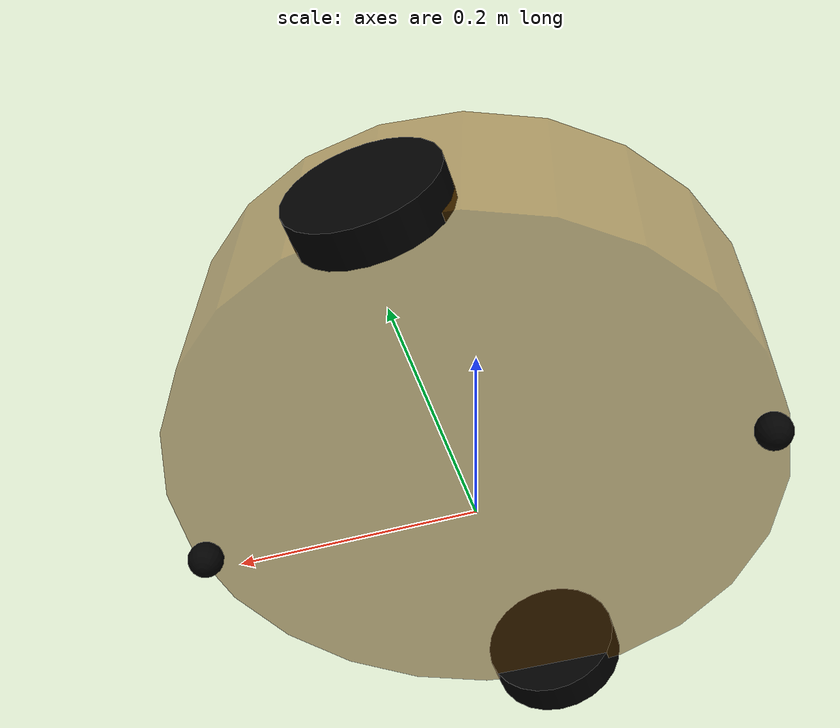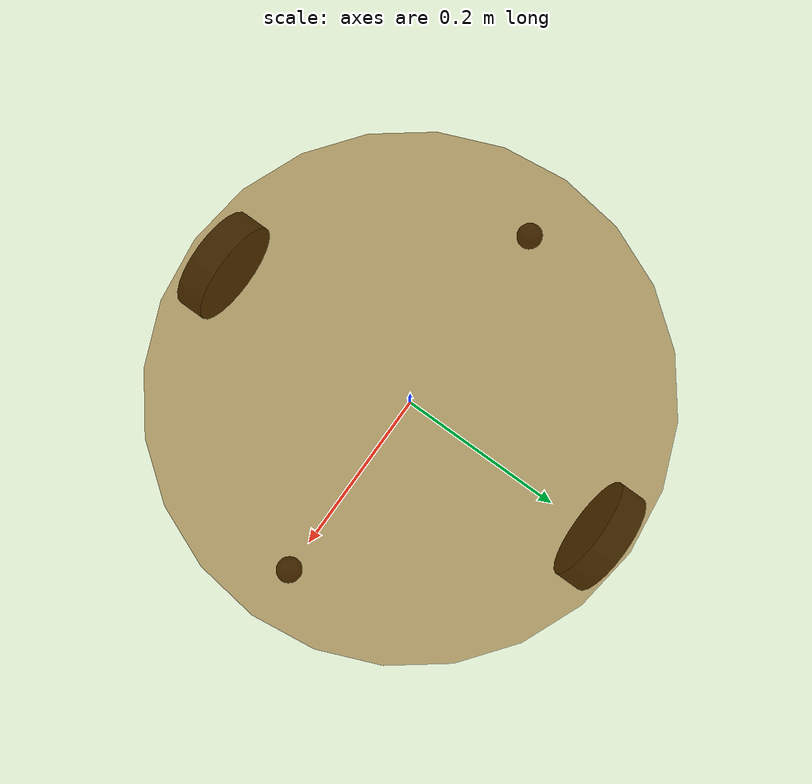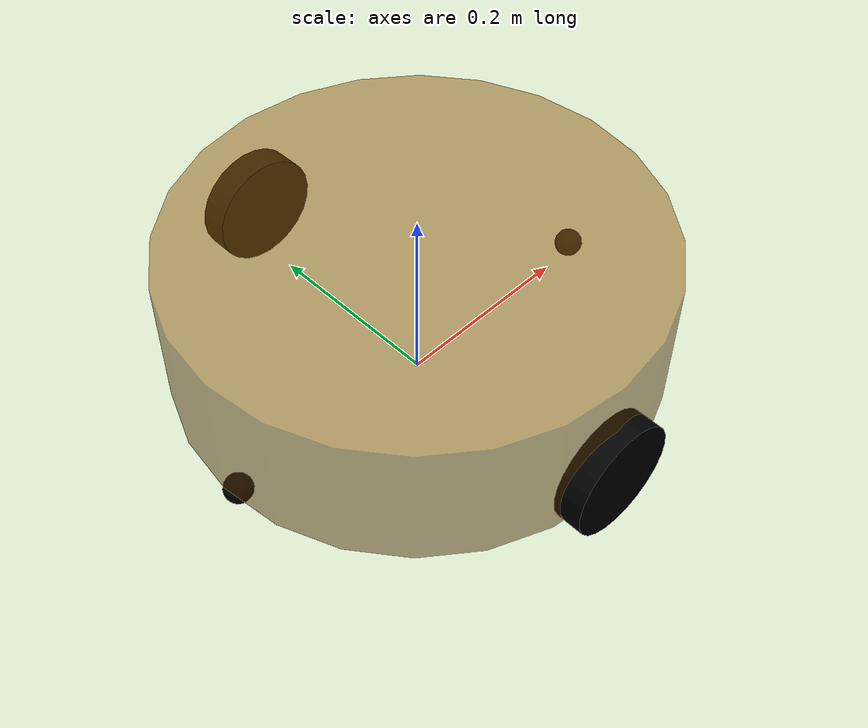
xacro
<!--
    使用 xacro 优化 URDF 版的小车底盘实现：

    实现思路:
    1.将一些常量、变量封装为 xacro:property
      比如:PI 值、小车底盘半径、离地间距、车轮半径、宽度 ....
    2.使用 宏 封装驱动轮以及支撑轮实现，调用相关宏生成驱动轮与支撑轮

-->
<!-- 根标签，必须声明 xmlns:xacro -->
<robot name="my_base" xmlns:xacro="http://www.ros.org/wiki/xacro">
    <!-- 封装变量、常量 -->
    <!-- PI 值设置精度需要高一些，否则后续车轮翻转量计算时，可能会出现肉眼不能察觉的车轮倾斜，从而导致模型抖动 -->
    <xacro:property name="PI" value="3.1415926"/>
    <!-- 宏:黑色设置 -->
    <material name="black">
        <color rgba="0.0 0.0 0.0 1.0" />
    </material>
    <!-- 底盘属性 -->
    <xacro:property name="base_footprint_radius" value="0.001" /> <!-- base_footprint 半径  -->
    <xacro:property name="base_link_radius" value="0.25" /> <!-- base_link 半径 -->
    <xacro:property name="base_link_length" value="0.15" /> <!-- base_link 长 -->
    <xacro:property name="earth_space" value="0.03" /> <!-- 离地间距 -->
    <xacro:property name="base_link_m" value="1" /> <!-- 质量  -->

    <!-- 底盘 -->
    <link name="base_footprint">
      <visual>
        <geometry>
          <sphere radius="${base_footprint_radius}" />
        </geometry>
      </visual>
    </link>

    <link name="base_link">
      <visual>
        <geometry>
          <cylinder radius="${base_link_radius}" length="${base_link_length}" />
        </geometry>
        <origin xyz="0 0 0" rpy="0 0 0" />
        <material name="yellow">
          <color rgba="0.5 0.3 0.0 0.5" />
        </material>
      </visual>
      <collision>
        <geometry>
          <cylinder radius="${base_link_radius}" length="${base_link_length}" />
        </geometry>
        <origin xyz="0 0 0" rpy="0 0 0" />
      </collision>
      <xacro:cylinder_inertial_matrix m="${base_link_m}" r="${base_link_radius}" h="${base_link_length}" />

    </link>

    <joint name="base_link2base_footprint" type="fixed">
      <parent link="base_footprint" />
      <child link="base_link" />
      <origin xyz="0 0 ${earth_space + base_link_length / 2 }" />
    </joint>
    <gazebo reference="base_link">
        <visual>
            <plugin name="set_model_color_plugin" filename="libset_model_color_plugin.so">
                <robotNamespace>$(arg car_name)</robotNamespace>
                <serviceName>baselink_color</serviceName>
                <color>$(arg color_r) $(arg color_g) $(arg color_b) $(arg color_a)</color>
            </plugin>
        </visual>
    </gazebo>

    <!-- 驱动轮 -->
    <!-- 驱动轮属性 -->
    <xacro:property name="wheel_radius" value="0.06" /><!-- 半径 -->
    <xacro:property name="wheel_length" value="0.03" /><!-- 宽度 -->
    <xacro:property name="wheel_m" value="0.1" /> <!-- 质量  -->

    <!-- 驱动轮宏实现 -->
    <xacro:macro name="add_wheels" params="name flag">
      <link name="${name}_wheel">
        <visual>
          <geometry>
            <cylinder radius="${wheel_radius}" length="${wheel_length}" />
          </geometry>
          <origin xyz="0.0 0.0 0.0" rpy="${PI / 2} 0.0 0.0" />
          <material name="black" />
        </visual>
        <collision>
          <geometry>
            <cylinder radius="${wheel_radius}" length="${wheel_length}" />
          </geometry>
          <origin xyz="0.0 0.0 0.0" rpy="${PI / 2} 0.0 0.0" />
        </collision>
        <xacro:cylinder_inertial_matrix m="${wheel_m}" r="${wheel_radius}" h="${wheel_length}" />

      </link>

      <joint name="${name}_wheel2base_link" type="continuous">
        <parent link="base_link" />
        <child link="${name}_wheel" />
        <origin xyz="0 ${flag * base_link_radius} ${-(earth_space + base_link_length / 2 - wheel_radius) }" />
        <axis xyz="0 1 0" />
      </joint>

      <gazebo reference="${name}_wheel">
        <material>Gazebo/Red</material>
      </gazebo>

    </xacro:macro>
    <xacro:add_wheels name="left" flag="1" />
    <xacro:add_wheels name="right" flag="-1" />

    <!-- 支撑轮 -->
    <!-- 支撑轮属性 -->
    <xacro:property name="support_wheel_radius" value="${earth_space/2}" /> <!-- 支撑轮半径 -->
    <xacro:property name="support_wheel_m" value="0.08" /> <!-- 质量  -->

    <!-- 支撑轮宏 -->
    <xacro:macro name="add_support_wheel" params="name flag" >
      <link name="${name}_wheel">
        <visual>
            <geometry>
                <sphere radius="${support_wheel_radius}" />
            </geometry>
            <origin xyz="0 0 0" rpy="0 0 0" />
            <material name="black" />
        </visual>
        <collision>
            <geometry>
                <sphere radius="${support_wheel_radius}" />
            </geometry>
            <origin xyz="0 0 0" rpy="0 0 0" />
        </collision>
        <xacro:sphere_inertial_matrix m="${support_wheel_m}" r="${support_wheel_radius}" />
      </link>

      <joint name="${name}_wheel2base_link" type="continuous">
          <parent link="base_link" />
          <child link="${name}_wheel" />
          <origin xyz="${flag * (base_link_radius - support_wheel_radius)} 0 ${-(base_link_length / 2 + earth_space / 2)}" />
          <axis xyz="1 1 1" />
      </joint>
      <gazebo reference="${name}_wheel">
        <material>Gazebo/Red</material>
      </gazebo>
    </xacro:macro>

    <xacro:add_support_wheel name="front" flag="1" />
    <xacro:add_support_wheel name="back" flag="-1" />

</robot>
